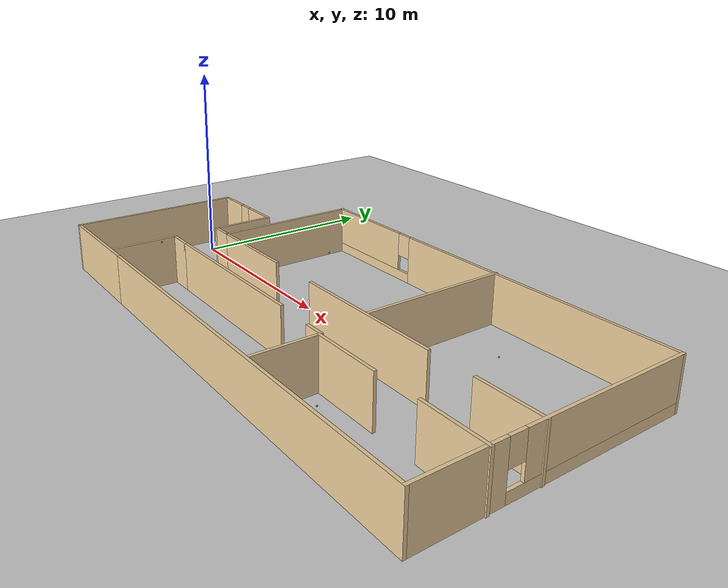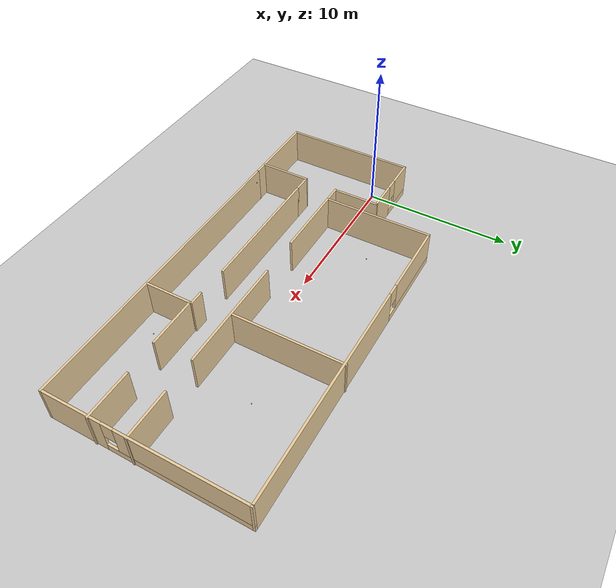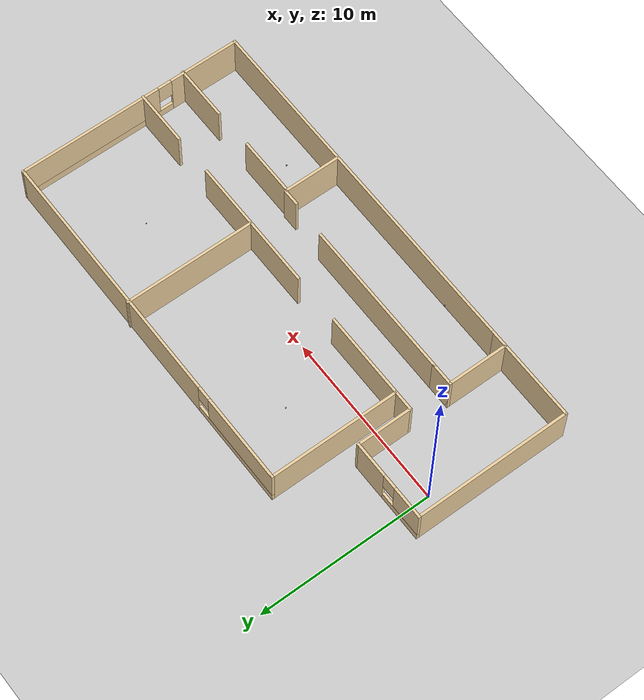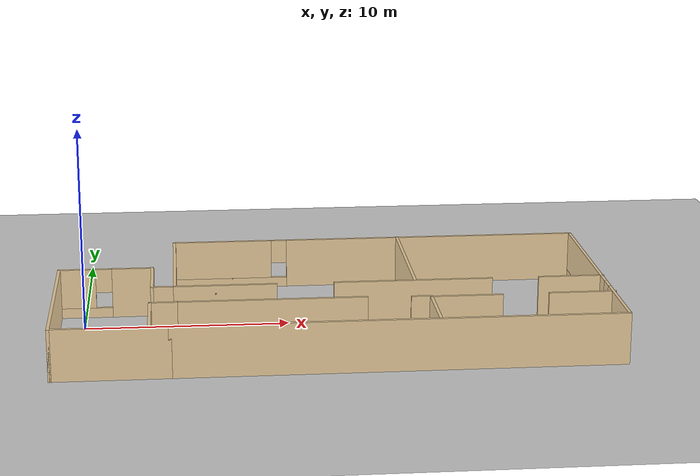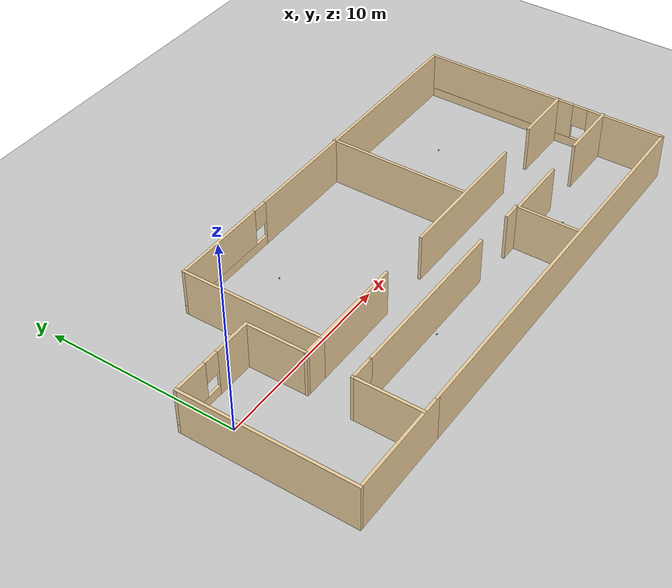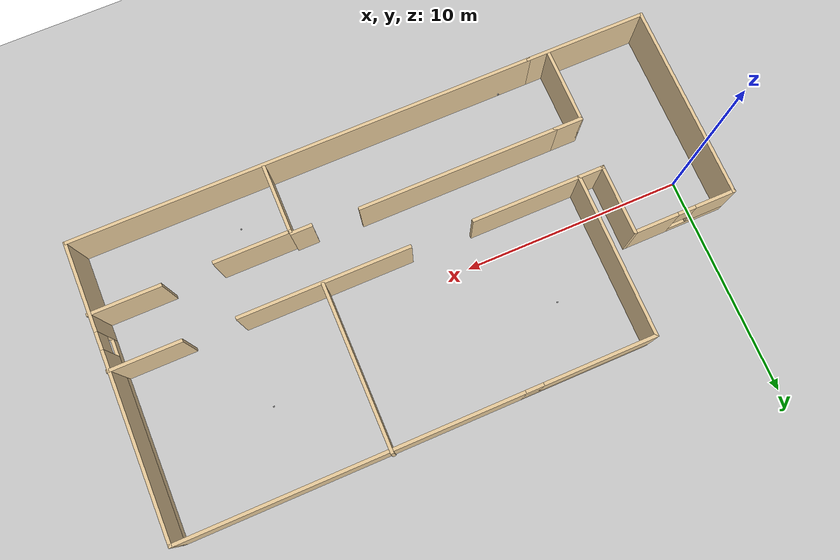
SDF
<sdf version="1.6">
 <world name="default">
  <light name="sun" type="directional">
   <pose>0 0 10 0 -0 0</pose>
   <diffuse>0.8 0.8 0.8 1</diffuse>
   <specular>0.2 0.2 0.2 1</specular>
   <attenuation>
    <range>1000</range>
    <constant>0.9</constant>
    <linear>0.01</linear>
    <quadratic>0.001</quadratic>
   </attenuation>
   <direction>-0.5 0.1 -0.9</direction>
  </light>
  <model name="ground_plane">
   <static>1</static>
   <link name="link">
    <collision name="collision">
     <geometry><plane><normal>0 0 1</normal><size>100 100</size></plane></geometry>
     <surface>
      <contact><collide_bitmask>65535</collide_bitmask></contact>
      <friction><ode><mu>100</mu><mu2>50</mu2></ode></friction>
     </surface>
    </collision>
    <visual name="visual">
     <cast_shadows>0</cast_shadows>
     <geometry><plane><normal>0 0 1</normal><size>100 100</size></plane></geometry>
     <material>
      <script><uri>file://media/materials/scripts/gazebo.material</uri><name>Gazebo/Grey</name></script>
     </material>
    </visual>
   </link>
  </model>
  <gravity>0 0 -9.8</gravity>
  <magnetic_field>6e-06 2.3e-05 -4.2e-05</magnetic_field>
  <atmosphere type="adiabatic"/>
  <physics name="default_physics" default="0" type="ode">
   <max_step_size>0.001</max_step_size>
   <real_time_factor>1</real_time_factor>
   <real_time_update_rate>1000</real_time_update_rate>
  </physics>
  <scene><ambient>0.4 0.4 0.4 1</ambient><background>0.7 0.7 0.7 1</background><shadows>1</shadows></scene>
  <spherical_coordinates>
   <surface_model>EARTH_WGS84</surface_model>
   <latitude_deg>0</latitude_deg>
   <longitude_deg>0</longitude_deg>
   <elevation>0</elevation>
   <heading_deg>0</heading_deg>
  </spherical_coordinates>
  <model name="husarion-flat">
   <pose>13.1392 -0.503687 0 0 -0 0</pose>
   <link name="Wall_0">
    <collision name="Wall_0_Collision">
     <geometry><box><size>21.25 0.15 2.5</size></box></geometry>
     <pose>0 0 1.25 0 -0 0</pose>
    </collision>
    <visual name="Wall_0_Visual">
     <pose>0 0 1.25 0 -0 0</pose>
     <geometry><box><size>21.25 0.15 2.5</size></box></geometry>
     <material>
      <script><uri>file://media/materials/scripts/gazebo.material</uri><name>Gazebo/Grey</name></script>
      <ambient>0.921569 0.807843 0.615686 1</ambient>
     </material>
     <meta><layer>0</layer></meta>
    </visual>
    <pose>1.58584 -6.58294 0 0 -0 0</pose>
   </link>
   <link name="Wall_1">
    <pose>12.1358 -0.032942 0 0 -0 1.5708</pose>
    <visual name="Wall_1_Visual_0">
     <pose>-4.56348 0 1.25 0 -0 0</pose>
     <geometry><box><size>4.12303 0.15 2.5</size></box></geometry>
     <material>
      <script><uri>file://media/materials/scripts/gazebo.material</uri><name>Gazebo/Grey</name></script>
      <ambient>0.921569 0.807843 0.615686 1</ambient>
     </material>
     <meta><layer>0</layer></meta>
    </visual>
    <collision name="Wall_1_Collision_0">
     <geometry><box><size>4.12303 0.15 2.5</size></box></geometry>
     <pose>-4.56348 0 1.25 0 -0 0</pose>
    </collision>
    <visual name="Wall_1_Visual_1">
     <pose>2.06152 0 0.25 0 -0 0</pose>
     <geometry><box><size>9.12697 0.15 0.5</size></box></geometry>
     <material>
      <script><uri>file://media/materials/scripts/gazebo.material</uri><name>Gazebo/Grey</name></script>
      <ambient>0.921569 0.807843 0.615686 1</ambient>
     </material>
     <meta><layer>0</layer></meta>
    </visual>
    <collision name="Wall_1_Collision_1">
     <geometry><box><size>9.12697 0.15 0.5</size></box></geometry>
     <pose>2.06152 0 0.25 0 -0 0</pose>
    </collision>
    <visual name="Wall_1_Visual_2">
     <pose>2.46152 0 1.5 0 -0 0</pose>
     <geometry><box><size>8.32696 0.15 2</size></box></geometry>
     <material>
      <script><uri>file://media/materials/scripts/gazebo.material</uri><name>Gazebo/Grey</name></script>
      <ambient>0.921569 0.807843 0.615686 1</ambient>
     </material>
     <meta><layer>0</layer></meta>
    </visual>
    <collision name="Wall_1_Collision_2">
     <geometry><box><size>8.32696 0.15 2</size></box></geometry>
     <pose>2.46152 0 1.5 0 -0 0</pose>
    </collision>
    <visual name="Wall_1_Visual_3">
     <pose>-2.10196 0 1.9 0 -0 0</pose>
     <geometry><box><size>0.8 0.15 1.2</size></box></geometry>
     <material>
      <script><uri>file://media/materials/scripts/gazebo.material</uri><name>Gazebo/Grey</name></script>
      <ambient>0.921569 0.807843 0.615686 1</ambient>
     </material>
     <meta><layer>0</layer></meta>
    </visual>
    <collision name="Wall_1_Collision_3">
     <geometry><box><size>0.8 0.15 1.2</size></box></geometry>
     <pose>-2.10196 0 1.9 0 -0 0</pose>
    </collision>
   </link>
   <link name="Wall_11">
    <collision name="Wall_11_Collision">
     <geometry><box><size>3.5 0.15 2.5</size></box></geometry>
     <pose>0 0 1.25 0 -0 0</pose>
    </collision>
    <visual name="Wall_11_Visual">
     <pose>0 0 1.25 0 -0 0</pose>
     <geometry><box><size>3.5 0.15 2.5</size></box></geometry>
     <material>
      <script><uri>file://media/materials/scripts/gazebo.material</uri><name>Gazebo/Grey</name></script>
      <ambient>0.921569 0.807843 0.615686 1</ambient>
     </material>
     <meta><layer>0</layer></meta>
    </visual>
    <pose>-9.8951 -4.85934 0 0 -0 -1.5708</pose>
   </link>
   <link name="Wall_13">
    <collision name="Wall_13_Collision">
     <geometry><box><size>1.37236 0.15 2.5</size></box></geometry>
     <pose>0 0 1.25 0 -0 0</pose>
    </collision>
    <visual name="Wall_13_Visual">
     <pose>0 0 1.25 0 -0 0</pose>
     <geometry><box><size>1.37236 0.15 2.5</size></box></geometry>
     <material>
      <script><uri>file://media/materials/scripts/gazebo.material</uri><name>Gazebo/Grey</name></script>
      <ambient>0.921569 0.807843 0.615686 1</ambient>
     </material>
     <meta><layer>0</layer></meta>
    </visual>
    <pose>-9.28392 -3.18434 0 0 -0 0</pose>
   </link>
   <link name="Wall_16">
    <collision name="Wall_16_Collision">
     <geometry><box><size>9.12764 0.15 2.5</size></box></geometry>
     <pose>0 0 1.25 0 -0 0</pose>
    </collision>
    <visual name="Wall_16_Visual">
     <pose>0 0 1.25 0 -0 0</pose>
     <geometry><box><size>9.12764 0.15 2.5</size></box></geometry>
     <material>
      <script><uri>file://media/materials/scripts/gazebo.material</uri><name>Gazebo/Grey</name></script>
      <ambient>0.921569 0.807843 0.615686 1</ambient>
     </material>
     <meta><layer>0</layer></meta>
    </visual>
    <pose>-4.18392 -3.18434 0 0 -0 0</pose>
   </link>
   <link name="Wall_18">
    <collision name="Wall_18_Collision">
     <geometry><box><size>3.25 0.15 2.5</size></box></geometry>
     <pose>0 0 1.25 0 -0 0</pose>
    </collision>
    <visual name="Wall_18_Visual">
     <pose>0 0 1.25 0 -0 0</pose>
     <geometry><box><size>3.25 0.15 2.5</size></box></geometry>
     <material>
      <script><uri>file://media/materials/scripts/gazebo.material</uri><name>Gazebo/Grey</name></script>
      <ambient>0.921569 0.807843 0.615686 1</ambient>
     </material>
     <meta><layer>0</layer></meta>
    </visual>
    <pose>3.37433 -4.9517 0 0 -0 1.5708</pose>
   </link>
   <link name="Wall_19">
    <collision name="Wall_19_Collision">
     <geometry><box><size>3.5 0.15 2.5</size></box></geometry>
     <pose>0 0 1.25 0 -0 0</pose>
    </collision>
    <visual name="Wall_19_Visual">
     <pose>0 0 1.25 0 -0 0</pose>
     <geometry><box><size>3.5 0.15 2.5</size></box></geometry>
     <material>
      <script><uri>file://media/materials/scripts/gazebo.material</uri><name>Gazebo/Grey</name></script>
      <ambient>0.921569 0.807843 0.615686 1</ambient>
     </material>
     <meta><layer>0</layer></meta>
    </visual>
    <pose>5.04933 -3.4017 0 0 -0 0</pose>
   </link>
   <link name="Wall_2">
    <pose>1.71084 6.51706 0 0 -0 3.14159</pose>
    <visual name="Wall_2_Visual_0">
     <pose>-2.94842 0 1.25 0 -0 0</pose>
     <geometry><box><size>15.1032 0.15 2.5</size></box></geometry>
     <material>
      <script><uri>file://media/materials/scripts/gazebo.material</uri><name>Gazebo/Grey</name></script>
      <ambient>0.921569 0.807843 0.615686 1</ambient>
     </material>
     <meta><layer>0</layer></meta>
    </visual>
    <collision name="Wall_2_Collision_0">
     <geometry><box><size>15.1032 0.15 2.5</size></box></geometry>
     <pose>-2.94842 0 1.25 0 -0 0</pose>
    </collision>
    <visual name="Wall_2_Visual_1">
     <pose>7.55158 0 0.25 0 -0 0</pose>
     <geometry><box><size>5.89684 0.15 0.5</size></box></geometry>
     <material>
      <script><uri>file://media/materials/scripts/gazebo.material</uri><name>Gazebo/Grey</name></script>
      <ambient>0.921569 0.807843 0.615686 1</ambient>
     </material>
     <meta><layer>0</layer></meta>
    </visual>
    <collision name="Wall_2_Collision_1">
     <geometry><box><size>5.89684 0.15 0.5</size></box></geometry>
     <pose>7.55158 0 0.25 0 -0 0</pose>
    </collision>
    <visual name="Wall_2_Visual_2">
     <pose>7.95158 0 1.5 0 -0 0</pose>
     <geometry><box><size>5.09684 0.15 2</size></box></geometry>
     <material>
      <script><uri>file://media/materials/scripts/gazebo.material</uri><name>Gazebo/Grey</name></script>
      <ambient>0.921569 0.807843 0.615686 1</ambient>
     </material>
     <meta><layer>0</layer></meta>
    </visual>
    <collision name="Wall_2_Collision_2">
     <geometry><box><size>5.09684 0.15 2</size></box></geometry>
     <pose>7.95158 0 1.5 0 -0 0</pose>
    </collision>
    <visual name="Wall_2_Visual_3">
     <pose>5.00316 0 1.9 0 -0 0</pose>
     <geometry><box><size>0.8 0.15 1.2</size></box></geometry>
     <material>
      <script><uri>file://media/materials/scripts/gazebo.material</uri><name>Gazebo/Grey</name></script>
      <ambient>0.921569 0.807843 0.615686 1</ambient>
     </material>
     <meta><layer>0</layer></meta>
    </visual>
    <collision name="Wall_2_Collision_3">
     <geometry><box><size>0.8 0.15 1.2</size></box></geometry>
     <pose>5.00316 0 1.9 0 -0 0</pose>
    </collision>
   </link>
   <link name="Wall_21">
    <collision name="Wall_21_Collision">
     <geometry><box><size>3.25 0.15 2.5</size></box></geometry>
     <pose>0 0 1.25 0 -0 0</pose>
    </collision>
    <visual name="Wall_21_Visual">
     <pose>0 0 1.25 0 -0 0</pose>
     <geometry><box><size>3.25 0.15 2.5</size></box></geometry>
     <material>
      <script><uri>file://media/materials/scripts/gazebo.material</uri><name>Gazebo/Grey</name></script>
      <ambient>0.921569 0.807843 0.615686 1</ambient>
     </material>
     <meta><layer>0</layer></meta>
    </visual>
    <pose>10.6436 -3.34617 0 0 -0 3.14159</pose>
   </link>
   <link name="Wall_23">
    <collision name="Wall_23_Collision">
     <geometry><box><size>5 0.15 2.5</size></box></geometry>
     <pose>0 0 1.25 0 -0 0</pose>
    </collision>
    <visual name="Wall_23_Visual">
     <pose>0 0 1.25 0 -0 0</pose>
     <geometry><box><size>5 0.15 2.5</size></box></geometry>
     <material>
      <script><uri>file://media/materials/scripts/gazebo.material</uri><name>Gazebo/Grey</name></script>
      <ambient>0.921569 0.807843 0.615686 1</ambient>
     </material>
     <meta><layer>0</layer></meta>
    </visual>
    <pose>-6.28916 -0.832942 0 0 -0 0</pose>
   </link>
   <link name="Wall_25">
    <collision name="Wall_25_Collision">
     <geometry><box><size>7.75 0.15 2.5</size></box></geometry>
     <pose>0 0 1.25 0 -0 0</pose>
    </collision>
    <visual name="Wall_25_Visual">
     <pose>0 0 1.25 0 -0 0</pose>
     <geometry><box><size>7.75 0.15 2.5</size></box></geometry>
     <material>
      <script><uri>file://media/materials/scripts/gazebo.material</uri><name>Gazebo/Grey</name></script>
      <ambient>0.921569 0.807843 0.615686 1</ambient>
     </material>
     <meta><layer>0</layer></meta>
    </visual>
    <pose>2.84558 -0.837919 0 0 -0 0</pose>
   </link>
   <link name="Wall_27">
    <collision name="Wall_27_Collision">
     <geometry><box><size>3.25 0.15 2.5</size></box></geometry>
     <pose>0 0 1.25 0 -0 0</pose>
    </collision>
    <visual name="Wall_27_Visual">
     <pose>0 0 1.25 0 -0 0</pose>
     <geometry><box><size>3.25 0.15 2.5</size></box></geometry>
     <material>
      <script><uri>file://media/materials/scripts/gazebo.material</uri><name>Gazebo/Grey</name></script>
      <ambient>0.921569 0.807843 0.615686 1</ambient>
     </material>
     <meta><layer>0</layer></meta>
    </visual>
    <pose>10.6286 -0.837919 0 0 -0 0</pose>
   </link>
   <link name="Wall_29">
    <collision name="Wall_29_Collision">
     <geometry><box><size>7.5 0.15 2.5</size></box></geometry>
     <pose>0 0 1.25 0 -0 0</pose>
    </collision>
    <visual name="Wall_29_Visual">
     <pose>0 0 1.25 0 -0 0</pose>
     <geometry><box><size>7.5 0.15 2.5</size></box></geometry>
     <material>
      <script><uri>file://media/materials/scripts/gazebo.material</uri><name>Gazebo/Grey</name></script>
      <ambient>0.921569 0.807843 0.615686 1</ambient>
     </material>
     <meta><layer>0</layer></meta>
    </visual>
    <pose>2.92932 2.90794 0 0 -0 -1.5708</pose>
   </link>
   <link name="Wall_3">
    <collision name="Wall_3_Collision">
     <geometry><box><size>7.5 0.15 2.5</size></box></geometry>
     <pose>0 0 1.25 0 -0 0</pose>
    </collision>
    <visual name="Wall_3_Visual">
     <pose>0 0 1.25 0 -0 0</pose>
     <geometry><box><size>7.5 0.15 2.5</size></box></geometry>
     <material>
      <script><uri>file://media/materials/scripts/gazebo.material</uri><name>Gazebo/Grey</name></script>
      <ambient>0.921569 0.807843 0.615686 1</ambient>
     </material>
     <meta><layer>0</layer></meta>
    </visual>
    <pose>-8.71416 2.84206 0 0 -0 -1.5708</pose>
   </link>
   <link name="Wall_31">
    <collision name="Wall_31_Collision">
     <geometry><box><size>1 0.15 2.5</size></box></geometry>
     <pose>0 0 1.25 0 -0 0</pose>
    </collision>
    <visual name="Wall_31_Visual">
     <pose>0 0 1.25 0 -0 0</pose>
     <geometry><box><size>1 0.15 2.5</size></box></geometry>
     <material>
      <script><uri>file://media/materials/scripts/gazebo.material</uri><name>Gazebo/Grey</name></script>
      <ambient>0.921569 0.807843 0.615686 1</ambient>
     </material>
     <meta><layer>0</layer></meta>
    </visual>
    <pose>2.91681 -3.30242 0 0 -0 3.14159</pose>
   </link>
   <link name="Wall_4">
    <collision name="Wall_4_Collision">
     <geometry><box><size>1.25 0.15 2.5</size></box></geometry>
     <pose>0 0 1.25 0 -0 0</pose>
    </collision>
    <visual name="Wall_4_Visual">
     <pose>0 0 1.25 0 -0 0</pose>
     <geometry><box><size>1.25 0.15 2.5</size></box></geometry>
     <material>
      <script><uri>file://media/materials/scripts/gazebo.material</uri><name>Gazebo/Grey</name></script>
      <ambient>0.921569 0.807843 0.615686 1</ambient>
     </material>
     <meta><layer>0</layer></meta>
    </visual>
    <pose>-9.26416 -0.832942 0 0 -0 3.14159</pose>
   </link>
   <link name="Wall_5">
    <collision name="Wall_5_Collision">
     <geometry><box><size>3.25 0.15 2.5</size></box></geometry>
     <pose>0 0 1.25 0 -0 0</pose>
    </collision>
    <visual name="Wall_5_Visual">
     <pose>0 0 1.25 0 -0 0</pose>
     <geometry><box><size>3.25 0.15 2.5</size></box></geometry>
     <material>
      <script><uri>file://media/materials/scripts/gazebo.material</uri><name>Gazebo/Grey</name></script>
      <ambient>0.921569 0.807843 0.615686 1</ambient>
     </material>
     <meta><layer>0</layer></meta>
    </visual>
    <pose>-9.81416 0.717058 0 0 -0 1.5708</pose>
   </link>
   <link name="Wall_6">
    <pose>-12.1142 2.26706 0 0 -0 3.14159</pose>
    <visual name="Wall_6_Visual_0">
     <pose>-1.33225 0 1.25 0 -0 0</pose>
     <geometry><box><size>2.08551 0.15 2.5</size></box></geometry>
     <material>
      <script><uri>file://media/materials/scripts/gazebo.material</uri><name>Gazebo/Grey</name></script>
      <ambient>0.921569 0.807843 0.615686 1</ambient>
     </material>
     <meta><layer>0</layer></meta>
    </visual>
    <collision name="Wall_6_Collision_0">
     <geometry><box><size>2.08551 0.15 2.5</size></box></geometry>
     <pose>-1.33225 0 1.25 0 -0 0</pose>
    </collision>
    <visual name="Wall_6_Visual_1">
     <pose>1.04275 0 0.25 0 -0 0</pose>
     <geometry><box><size>2.66449 0.15 0.5</size></box></geometry>
     <material>
      <script><uri>file://media/materials/scripts/gazebo.material</uri><name>Gazebo/Grey</name></script>
      <ambient>0.921569 0.807843 0.615686 1</ambient>
     </material>
     <meta><layer>0</layer></meta>
    </visual>
    <collision name="Wall_6_Collision_1">
     <geometry><box><size>2.66449 0.15 0.5</size></box></geometry>
     <pose>1.04275 0 0.25 0 -0 0</pose>
    </collision>
    <visual name="Wall_6_Visual_2">
     <pose>1.44275 0 1.5 0 -0 0</pose>
     <geometry><box><size>1.86449 0.15 2</size></box></geometry>
     <material>
      <script><uri>file://media/materials/scripts/gazebo.material</uri><name>Gazebo/Grey</name></script>
      <ambient>0.921569 0.807843 0.615686 1</ambient>
     </material>
     <meta><layer>0</layer></meta>
    </visual>
    <collision name="Wall_6_Collision_2">
     <geometry><box><size>1.86449 0.15 2</size></box></geometry>
     <pose>1.44275 0 1.5 0 -0 0</pose>
    </collision>
    <visual name="Wall_6_Visual_3">
     <pose>0.110506 0 1.9 0 -0 0</pose>
     <geometry><box><size>0.8 0.15 1.2</size></box></geometry>
     <material>
      <script><uri>file://media/materials/scripts/gazebo.material</uri><name>Gazebo/Grey</name></script>
      <ambient>0.921569 0.807843 0.615686 1</ambient>
     </material>
     <meta><layer>0</layer></meta>
    </visual>
    <collision name="Wall_6_Collision_3">
     <geometry><box><size>0.8 0.15 1.2</size></box></geometry>
     <pose>0.110506 0 1.9 0 -0 0</pose>
    </collision>
   </link>
   <link name="Wall_7">
    <collision name="Wall_7_Collision">
     <geometry><box><size>9 0.15 2.5</size></box></geometry>
     <pose>0 0 1.25 0 -0 0</pose>
    </collision>
    <visual name="Wall_7_Visual">
     <pose>0 0 1.25 0 -0 0</pose>
     <geometry><box><size>9 0.15 2.5</size></box></geometry>
     <material>
      <script><uri>file://media/materials/scripts/gazebo.material</uri><name>Gazebo/Grey</name></script>
      <ambient>0.921569 0.807843 0.615686 1</ambient>
     </material>
     <meta><layer>0</layer></meta>
    </visual>
    <pose>-14.4142 -2.15794 0 0 -0 -1.5708</pose>
   </link>
   <link name="Wall_8">
    <collision name="Wall_8_Collision">
     <geometry><box><size>5.6 0.15 2.5</size></box></geometry>
     <pose>0 0 1.25 0 -0 0</pose>
    </collision>
    <visual name="Wall_8_Visual">
     <pose>0 0 1.25 0 -0 0</pose>
     <geometry><box><size>5.6 0.15 2.5</size></box></geometry>
     <material>
      <script><uri>file://media/materials/scripts/gazebo.material</uri><name>Gazebo/Grey</name></script>
      <ambient>0.921569 0.807843 0.615686 1</ambient>
     </material>
     <meta><layer>0</layer></meta>
    </visual>
    <pose>-11.6892 -6.58294 0 0 -0 0</pose>
   </link>
   <static>1</static>
  </model>
  <model name="model1">
   <pose>7.32654 3.04888 1.40326 0 -0 0</pose>
   <link name="link1">
    <visual name="visual_box1">
     <geometry><box><size>0.05 0.05 0.05</size></box></geometry>
     <laser_retro>100</laser_retro>
    </visual>
    <collision name="collision_box6">
     <pose>0 0 -0.5 0 -0 0</pose>
     <max_contacts>250</max_contacts>
     <geometry><box><size>0.05 0.05 0.05</size></box></geometry>
     <surface>
      <friction><ode><mu>0.5</mu><mu2>0.2</mu2><fdir1>1 0 0</fdir1><slip1>0</slip1><slip2>0</slip2></ode></friction>
      <bounce><restitution_coefficient>0</restitution_coefficient><threshold>1e+06</threshold></bounce>
      <contact>
       <ode>
        <soft_cfm>0</soft_cfm>
        <soft_erp>0.2</soft_erp>
        <kp>1e+15</kp>
        <kd>1e+13</kd>
        <max_vel>100</max_vel>
        <min_depth>0.0001</min_depth>
       </ode>
      </contact>
     </surface>
     <laser_retro>100</laser_retro>
    </collision>
    <sensor name="sonar1" type="ray">
     <pose>0.25 0 0 0 -0 0</pose>
     <update_rate>5</update_rate>
     <ray>
      <scan>
       <horizontal>
        <samples>5</samples>
        <resolution>1</resolution>
        <min_angle>-0.25</min_angle>
        <max_angle>0.25</max_angle>
       </horizontal>
       <vertical>
        <samples>5</samples>
        <resolution>1</resolution>
        <min_angle>-0.25</min_angle>
        <max_angle>0.25</max_angle>
       </vertical>
      </scan>
      <range><min>0.01</min><max>100</max><resolution>0.01</resolution></range>
     </ray>
     <plugin name="gazebo_ros_range" filename="libgazebo_ros_range.so">
      <gaussianNoise>0.005</gaussianNoise>
      <alwaysOn>true</alwaysOn>
      <updateRate>5</updateRate>
      <topicName>sonar1</topicName>
      <frameName>sonar1_link</frameName>
      <fov>0.5</fov>
      <radiation>ultrasound</radiation>
     </plugin>
    </sensor>
    <gravity>0</gravity>
    <self_collide>1</self_collide>
   </link>
   <static>1</static>
  </model>
  <model name="model2">
   <pose>6.3071 -5.71473 3.50869 3.14159 1.50509 3.14159</pose>
   <link name="link2">
    <visual name="visual_box2">
     <geometry><box><size>0.05 0.05 0.05</size></box></geometry>
     <laser_retro>100</laser_retro>
    </visual>
    <collision name="collision_box6">
     <pose>0 0 -0.5 0 -0 0</pose>
     <max_contacts>250</max_contacts>
     <geometry><box><size>0.05 0.05 0.05</size></box></geometry>
     <surface>
      <friction><ode><mu>0.5</mu><mu2>0.2</mu2><fdir1>1 0 0</fdir1><slip1>0</slip1><slip2>0</slip2></ode></friction>
      <bounce><restitution_coefficient>0</restitution_coefficient><threshold>1e+06</threshold></bounce>
      <contact>
       <ode>
        <soft_cfm>0</soft_cfm>
        <soft_erp>0.2</soft_erp>
        <kp>1e+15</kp>
        <kd>1e+13</kd>
        <max_vel>100</max_vel>
        <min_depth>0.0001</min_depth>
       </ode>
      </contact>
     </surface>
     <laser_retro>100</laser_retro>
    </collision>
    <sensor name="sonar2" type="ray">
     <pose>0.25 0 0 0 -0 0</pose>
     <update_rate>5</update_rate>
     <ray>
      <scan>
       <horizontal>
        <samples>5</samples>
        <resolution>1</resolution>
        <min_angle>-0.25</min_angle>
        <max_angle>0.25</max_angle>
       </horizontal>
       <vertical>
        <samples>5</samples>
        <resolution>1</resolution>
        <min_angle>-0.25</min_angle>
        <max_angle>0.25</max_angle>
       </vertical>
      </scan>
      <range><min>0.01</min><max>100</max><resolution>0.01</resolution></range>
     </ray>
     <plugin name="gazebo_ros_range" filename="libgazebo_ros_range.so">
      <gaussianNoise>0.005</gaussianNoise>
      <alwaysOn>true</alwaysOn>
      <updateRate>5</updateRate>
      <topicName>sonar2</topicName>
      <frameName>sonar2_link</frameName>
      <fov>0.5</fov>
      <radiation>ultrasound</radiation>
     </plugin>
    </sensor>
    <gravity>0</gravity>
    <self_collide>1</self_collide>
   </link>
   <static>1</static>
  </model>
  <model name="model3">
   <pose>19.8693 2.39646 1.05168 1.73779 -0.10042 -3.12345</pose>
   <link name="link3">
    <visual name="visual_box3">
     <geometry><box><size>0.05 0.05 0.05</size></box></geometry>
     <laser_retro>100</laser_retro>
    </visual>
    <collision name="collision_box6">
     <pose>0 0 -0.5 0 -0 0</pose>
     <max_contacts>250</max_contacts>
     <geometry><box><size>0.05 0.05 0.05</size></box></geometry>
     <surface>
      <friction><ode><mu>0.5</mu><mu2>0.2</mu2><fdir1>1 0 0</fdir1><slip1>0</slip1><slip2>0</slip2></ode></friction>
      <bounce><restitution_coefficient>0</restitution_coefficient><threshold>1e+06</threshold></bounce>
      <contact>
       <ode>
        <soft_cfm>0</soft_cfm>
        <soft_erp>0.2</soft_erp>
        <kp>1e+15</kp>
        <kd>1e+13</kd>
        <max_vel>100</max_vel>
        <min_depth>0.0001</min_depth>
       </ode>
      </contact>
     </surface>
     <laser_retro>100</laser_retro>
    </collision>
    <sensor name="sonar3" type="ray">
     <pose>0.25 0 0 0 -0 0</pose>
     <update_rate>5</update_rate>
     <ray>
      <scan>
       <horizontal>
        <samples>5</samples>
        <resolution>1</resolution>
        <min_angle>-0.25</min_angle>
        <max_angle>0.25</max_angle>
       </horizontal>
       <vertical>
        <samples>5</samples>
        <resolution>1</resolution>
        <min_angle>-0.25</min_angle>
        <max_angle>0.25</max_angle>
       </vertical>
      </scan>
      <range><min>0.01</min><max>100</max><resolution>0.01</resolution></range>
     </ray>
     <plugin name="gazebo_ros_range" filename="libgazebo_ros_range.so">
      <gaussianNoise>0.005</gaussianNoise>
      <alwaysOn>true</alwaysOn>
      <updateRate>5</updateRate>
      <topicName>sonar3</topicName>
      <frameName>sonar3_link</frameName>
      <fov>0.5</fov>
      <radiation>ultrasound</radiation>
     </plugin>
    </sensor>
    <gravity>0</gravity>
    <self_collide>1</self_collide>
   </link>
   <static>1</static>
  </model>
  <model name="model4">
   <pose>18.4755 -5.34379 0.873709 0 -0 0</pose>
   <link name="link4">
    <visual name="visual_box4">
     <geometry><box><size>0.05 0.05 0.05</size></box></geometry>
     <laser_retro>100</laser_retro>
    </visual>
    <collision name="collision_box6">
     <pose>0 0 -0.5 0 -0 0</pose>
     <max_contacts>250</max_contacts>
     <geometry><box><size>0.05 0.05 0.05</size></box></geometry>
     <surface>
      <friction><ode><mu>0.5</mu><mu2>0.2</mu2><fdir1>1 0 0</fdir1><slip1>0</slip1><slip2>0</slip2></ode></friction>
      <bounce><restitution_coefficient>0</restitution_coefficient><threshold>1e+06</threshold></bounce>
      <contact>
       <ode>
        <soft_cfm>0</soft_cfm>
        <soft_erp>0.2</soft_erp>
        <kp>1e+15</kp>
        <kd>1e+13</kd>
        <max_vel>100</max_vel>
        <min_depth>0.0001</min_depth>
       </ode>
      </contact>
     </surface>
     <laser_retro>100</laser_retro>
    </collision>
    <sensor name="sonar4" type="ray">
     <pose>0.25 0 0 0 -0 0</pose>
     <update_rate>5</update_rate>
     <ray>
      <scan>
       <horizontal>
        <samples>5</samples>
        <resolution>1</resolution>
        <min_angle>-0.25</min_angle>
        <max_angle>0.25</max_angle>
       </horizontal>
       <vertical>
        <samples>5</samples>
        <resolution>1</resolution>
        <min_angle>-0.25</min_angle>
        <max_angle>0.25</max_angle>
       </vertical>
      </scan>
      <range><min>0.01</min><max>100</max><resolution>0.01</resolution></range>
     </ray>
     <plugin name="gazebo_ros_range" filename="libgazebo_ros_range.so">
      <gaussianNoise>0.005</gaussianNoise>
      <alwaysOn>true</alwaysOn>
      <updateRate>5</updateRate>
      <topicName>sonar4</topicName>
      <frameName>sonar4_link</frameName>
      <fov>0.5</fov>
      <radiation>ultrasound</radiation>
     </plugin>
    </sensor>
    <gravity>0</gravity>
    <self_collide>1</self_collide>
   </link>
   <static>1</static>
  </model>
 </world>
</sdf>
